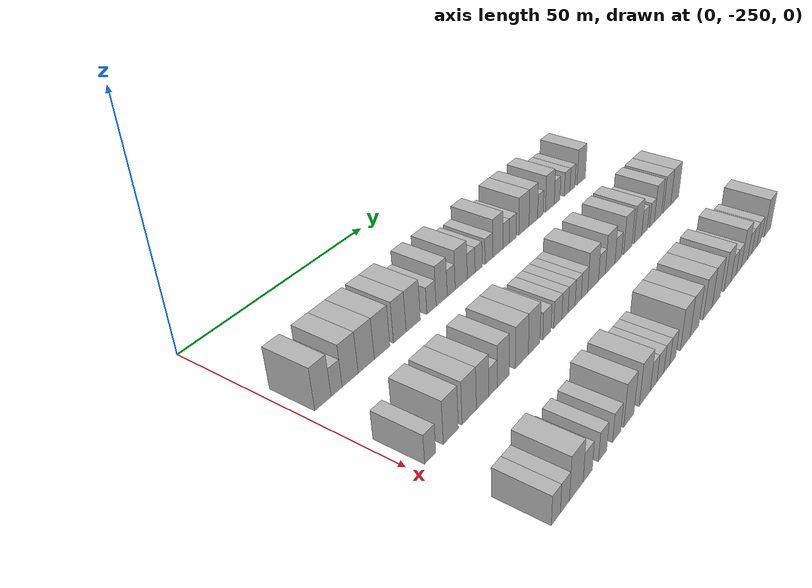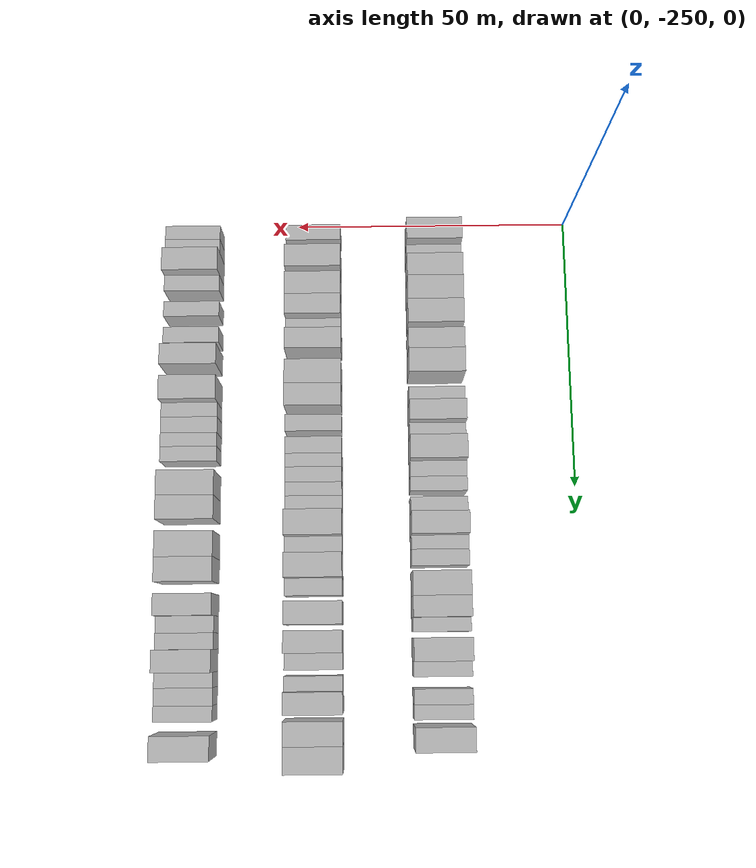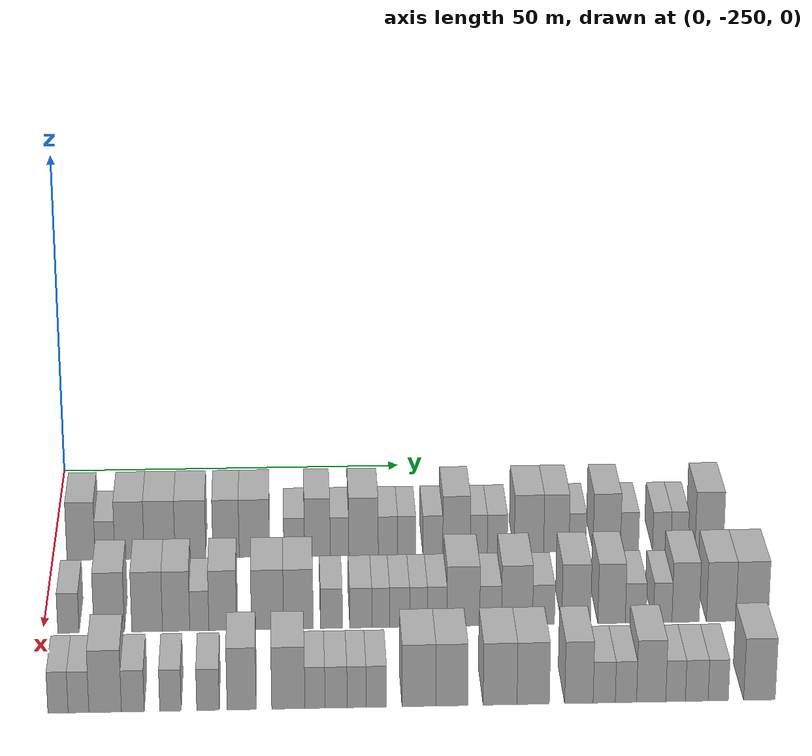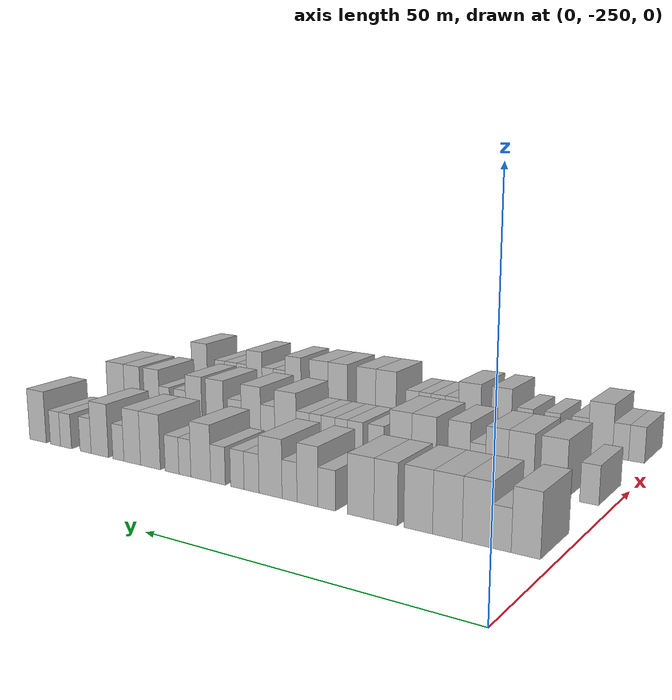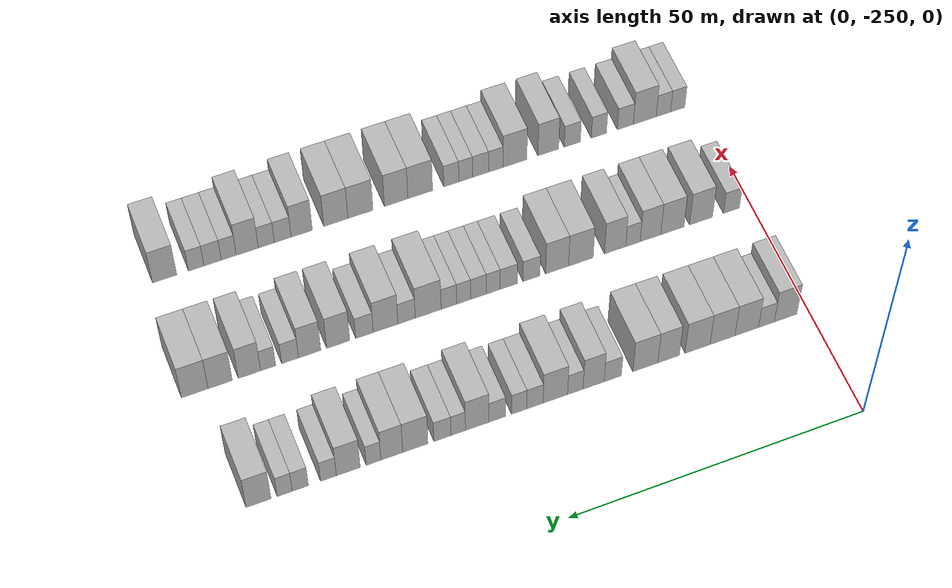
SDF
<sdf version="1.6">
 <world name="default">
  <model name="building_1">
   <static>1</static>
   <pose>25.0000 -246.0041 0 0.000000 0.000000 0.000000</pose>
   <link name="link">
    <pose>0 0 4.50 0 0 0</pose>
    <collision name="collision"><geometry><box><size>10.0000 3.9917 9.0000</size></box></geometry></collision>
    <visual name="visual">
     <cast_shadows>0</cast_shadows>
     <geometry><box><size>10.0000 3.9917 9.0000</size></box></geometry>
     <material>
      <script>
       <uri>model://HANNAS_wall/materials/scripts</uri>
       <uri>model://HANNAS_wall/materials/textures</uri>
       <name>vrc/HANNAS_wall</name>
      </script>
     </material>
    </visual>
   </link>
  </model>
  <model name="building_2">
   <static>1</static>
   <pose>25.0000 -242.6186 0 0.000000 0.000000 0.000000</pose>
   <link name="link">
    <pose>0 0 3.00 0 0 0</pose>
    <collision name="collision"><geometry><box><size>10.0000 2.7794 6.0000</size></box></geometry></collision>
    <visual name="visual">
     <cast_shadows>0</cast_shadows>
     <geometry><box><size>10.0000 2.7794 6.0000</size></box></geometry>
     <material>
      <script>
       <uri>model://HANNAS_wall/materials/scripts</uri>
       <uri>model://HANNAS_wall/materials/textures</uri>
       <name>vrc/HANNAS_wall</name>
      </script>
     </material>
    </visual>
   </link>
  </model>
  <model name="building_3">
   <static>1</static>
   <pose>25.0000 -239.1554 0 0.000000 0.000000 0.000000</pose>
   <link name="link">
    <pose>0 0 4.50 0 0 0</pose>
    <collision name="collision"><geometry><box><size>10.0000 4.1470 9.0000</size></box></geometry></collision>
    <visual name="visual">
     <cast_shadows>0</cast_shadows>
     <geometry><box><size>10.0000 4.1470 9.0000</size></box></geometry>
     <material>
      <script>
       <uri>model://HANNAS_wall/materials/scripts</uri>
       <uri>model://HANNAS_wall/materials/textures</uri>
       <name>vrc/HANNAS_wall</name>
      </script>
     </material>
    </visual>
   </link>
  </model>
  <model name="building_4">
   <static>1</static>
   <pose>25.0000 -234.9000 0 0.000000 0.000000 0.000000</pose>
   <link name="link">
    <pose>0 0 4.50 0 0 0</pose>
    <collision name="collision"><geometry><box><size>10.0000 4.3639 9.0000</size></box></geometry></collision>
    <visual name="visual">
     <cast_shadows>0</cast_shadows>
     <geometry><box><size>10.0000 4.3639 9.0000</size></box></geometry>
     <material>
      <script>
       <uri>model://HANNAS_wall/materials/scripts</uri>
       <uri>model://HANNAS_wall/materials/textures</uri>
       <name>vrc/HANNAS_wall</name>
      </script>
     </material>
    </visual>
   </link>
  </model>
  <model name="building_5">
   <static>1</static>
   <pose>25.0000 -230.5349 0 0.000000 0.000000 0.000000</pose>
   <link name="link">
    <pose>0 0 4.50 0 0 0</pose>
    <collision name="collision"><geometry><box><size>10.0000 4.3663 9.0000</size></box></geometry></collision>
    <visual name="visual">
     <cast_shadows>0</cast_shadows>
     <geometry><box><size>10.0000 4.3663 9.0000</size></box></geometry>
     <material>
      <script>
       <uri>model://HANNAS_wall/materials/scripts</uri>
       <uri>model://HANNAS_wall/materials/textures</uri>
       <name>vrc/HANNAS_wall</name>
      </script>
     </material>
    </visual>
   </link>
  </model>
  <model name="building_6">
   <static>1</static>
   <pose>25.0000 -225.4878 0 0.000000 0.000000 0.000000</pose>
   <link name="link">
    <pose>0 0 4.50 0 0 0</pose>
    <collision name="collision"><geometry><box><size>10.0000 3.7281 9.0000</size></box></geometry></collision>
    <visual name="visual">
     <cast_shadows>0</cast_shadows>
     <geometry><box><size>10.0000 3.7281 9.0000</size></box></geometry>
     <material>
      <script>
       <uri>model://HANNAS_wall/materials/scripts</uri>
       <uri>model://HANNAS_wall/materials/textures</uri>
       <name>vrc/HANNAS_wall</name>
      </script>
     </material>
    </visual>
   </link>
  </model>
  <model name="building_7">
   <static>1</static>
   <pose>25.0000 -221.4656 0 0.000000 0.000000 0.000000</pose>
   <link name="link">
    <pose>0 0 4.50 0 0 0</pose>
    <collision name="collision"><geometry><box><size>10.0000 4.3163 9.0000</size></box></geometry></collision>
    <visual name="visual">
     <cast_shadows>0</cast_shadows>
     <geometry><box><size>10.0000 4.3163 9.0000</size></box></geometry>
     <material>
      <script>
       <uri>model://HANNAS_wall/materials/scripts</uri>
       <uri>model://HANNAS_wall/materials/textures</uri>
       <name>vrc/HANNAS_wall</name>
      </script>
     </material>
    </visual>
   </link>
  </model>
  <model name="building_8">
   <static>1</static>
   <pose>25.0000 -215.8325 0 0.000000 0.000000 0.000000</pose>
   <link name="link">
    <pose>0 0 3.00 0 0 0</pose>
    <collision name="collision"><geometry><box><size>10.0000 2.9498 6.0000</size></box></geometry></collision>
    <visual name="visual">
     <cast_shadows>0</cast_shadows>
     <geometry><box><size>10.0000 2.9498 6.0000</size></box></geometry>
     <material>
      <script>
       <uri>model://HANNAS_wall/materials/scripts</uri>
       <uri>model://HANNAS_wall/materials/textures</uri>
       <name>vrc/HANNAS_wall</name>
      </script>
     </material>
    </visual>
   </link>
  </model>
  <model name="building_9">
   <static>1</static>
   <pose>25.0000 -212.5433 0 0.000000 0.000000 0.000000</pose>
   <link name="link">
    <pose>0 0 4.50 0 0 0</pose>
    <collision name="collision"><geometry><box><size>10.0000 3.6286 9.0000</size></box></geometry></collision>
    <visual name="visual">
     <cast_shadows>0</cast_shadows>
     <geometry><box><size>10.0000 3.6286 9.0000</size></box></geometry>
     <material>
      <script>
       <uri>model://HANNAS_wall/materials/scripts</uri>
       <uri>model://HANNAS_wall/materials/textures</uri>
       <name>vrc/HANNAS_wall</name>
      </script>
     </material>
    </visual>
   </link>
  </model>
  <model name="building_10">
   <static>1</static>
   <pose>25.0000 -209.4067 0 0.000000 0.000000 0.000000</pose>
   <link name="link">
    <pose>0 0 3.00 0 0 0</pose>
    <collision name="collision"><geometry><box><size>10.0000 2.6446 6.0000</size></box></geometry></collision>
    <visual name="visual">
     <cast_shadows>0</cast_shadows>
     <geometry><box><size>10.0000 2.6446 6.0000</size></box></geometry>
     <material>
      <script>
       <uri>model://HANNAS_wall/materials/scripts</uri>
       <uri>model://HANNAS_wall/materials/textures</uri>
       <name>vrc/HANNAS_wall</name>
      </script>
     </material>
    </visual>
   </link>
  </model>
  <model name="building_11">
   <static>1</static>
   <pose>25.0000 -205.9943 0 0.000000 0.000000 0.000000</pose>
   <link name="link">
    <pose>0 0 4.50 0 0 0</pose>
    <collision name="collision"><geometry><box><size>10.0000 4.1802 9.0000</size></box></geometry></collision>
    <visual name="visual">
     <cast_shadows>0</cast_shadows>
     <geometry><box><size>10.0000 4.1802 9.0000</size></box></geometry>
     <material>
      <script>
       <uri>model://HANNAS_wall/materials/scripts</uri>
       <uri>model://HANNAS_wall/materials/textures</uri>
       <name>vrc/HANNAS_wall</name>
      </script>
     </material>
    </visual>
   </link>
  </model>
  <model name="building_12">
   <static>1</static>
   <pose>25.0000 -202.5195 0 0.000000 0.000000 0.000000</pose>
   <link name="link">
    <pose>0 0 3.00 0 0 0</pose>
    <collision name="collision"><geometry><box><size>10.0000 2.7696 6.0000</size></box></geometry></collision>
    <visual name="visual">
     <cast_shadows>0</cast_shadows>
     <geometry><box><size>10.0000 2.7696 6.0000</size></box></geometry>
     <material>
      <script>
       <uri>model://HANNAS_wall/materials/scripts</uri>
       <uri>model://HANNAS_wall/materials/textures</uri>
       <name>vrc/HANNAS_wall</name>
      </script>
     </material>
    </visual>
   </link>
  </model>
  <model name="building_13">
   <static>1</static>
   <pose>25.0000 -199.8488 0 0.000000 0.000000 0.000000</pose>
   <link name="link">
    <pose>0 0 3.00 0 0 0</pose>
    <collision name="collision"><geometry><box><size>10.0000 2.5718 6.0000</size></box></geometry></collision>
    <visual name="visual">
     <cast_shadows>0</cast_shadows>
     <geometry><box><size>10.0000 2.5718 6.0000</size></box></geometry>
     <material>
      <script>
       <uri>model://HANNAS_wall/materials/scripts</uri>
       <uri>model://HANNAS_wall/materials/textures</uri>
       <name>vrc/HANNAS_wall</name>
      </script>
     </material>
    </visual>
   </link>
  </model>
  <model name="building_14">
   <static>1</static>
   <pose>25.0000 -196.1466 0 0.000000 0.000000 0.000000</pose>
   <link name="link">
    <pose>0 0 3.00 0 0 0</pose>
    <collision name="collision"><geometry><box><size>10.0000 2.8326 6.0000</size></box></geometry></collision>
    <visual name="visual">
     <cast_shadows>0</cast_shadows>
     <geometry><box><size>10.0000 2.8326 6.0000</size></box></geometry>
     <material>
      <script>
       <uri>model://HANNAS_wall/materials/scripts</uri>
       <uri>model://HANNAS_wall/materials/textures</uri>
       <name>vrc/HANNAS_wall</name>
      </script>
     </material>
    </visual>
   </link>
  </model>
  <model name="building_15">
   <static>1</static>
   <pose>25.0000 -192.7715 0 0.000000 0.000000 0.000000</pose>
   <link name="link">
    <pose>0 0 4.50 0 0 0</pose>
    <collision name="collision"><geometry><box><size>10.0000 3.9178 9.0000</size></box></geometry></collision>
    <visual name="visual">
     <cast_shadows>0</cast_shadows>
     <geometry><box><size>10.0000 3.9178 9.0000</size></box></geometry>
     <material>
      <script>
       <uri>model://HANNAS_wall/materials/scripts</uri>
       <uri>model://HANNAS_wall/materials/textures</uri>
       <name>vrc/HANNAS_wall</name>
      </script>
     </material>
    </visual>
   </link>
  </model>
  <model name="building_16">
   <static>1</static>
   <pose>25.0000 -189.5995 0 0.000000 0.000000 0.000000</pose>
   <link name="link">
    <pose>0 0 3.00 0 0 0</pose>
    <collision name="collision"><geometry><box><size>10.0000 2.4261 6.0000</size></box></geometry></collision>
    <visual name="visual">
     <cast_shadows>0</cast_shadows>
     <geometry><box><size>10.0000 2.4261 6.0000</size></box></geometry>
     <material>
      <script>
       <uri>model://HANNAS_wall/materials/scripts</uri>
       <uri>model://HANNAS_wall/materials/textures</uri>
       <name>vrc/HANNAS_wall</name>
      </script>
     </material>
    </visual>
   </link>
  </model>
  <model name="building_17">
   <static>1</static>
   <pose>25.0000 -186.9614 0 0.000000 0.000000 0.000000</pose>
   <link name="link">
    <pose>0 0 3.00 0 0 0</pose>
    <collision name="collision"><geometry><box><size>10.0000 2.8503 6.0000</size></box></geometry></collision>
    <visual name="visual">
     <cast_shadows>0</cast_shadows>
     <geometry><box><size>10.0000 2.8503 6.0000</size></box></geometry>
     <material>
      <script>
       <uri>model://HANNAS_wall/materials/scripts</uri>
       <uri>model://HANNAS_wall/materials/textures</uri>
       <name>vrc/HANNAS_wall</name>
      </script>
     </material>
    </visual>
   </link>
  </model>
  <model name="building_18">
   <static>1</static>
   <pose>25.0000 -182.4439 0 0.000000 0.000000 0.000000</pose>
   <link name="link">
    <pose>0 0 4.50 0 0 0</pose>
    <collision name="collision"><geometry><box><size>10.0000 4.1845 9.0000</size></box></geometry></collision>
    <visual name="visual">
     <cast_shadows>0</cast_shadows>
     <geometry><box><size>10.0000 4.1845 9.0000</size></box></geometry>
     <material>
      <script>
       <uri>model://HANNAS_wall/materials/scripts</uri>
       <uri>model://HANNAS_wall/materials/textures</uri>
       <name>vrc/HANNAS_wall</name>
      </script>
     </material>
    </visual>
   </link>
  </model>
  <model name="building_19">
   <static>1</static>
   <pose>25.0000 -178.5426 0 0.000000 0.000000 0.000000</pose>
   <link name="link">
    <pose>0 0 4.50 0 0 0</pose>
    <collision name="collision"><geometry><box><size>10.0000 3.6182 9.0000</size></box></geometry></collision>
    <visual name="visual">
     <cast_shadows>0</cast_shadows>
     <geometry><box><size>10.0000 3.6182 9.0000</size></box></geometry>
     <material>
      <script>
       <uri>model://HANNAS_wall/materials/scripts</uri>
       <uri>model://HANNAS_wall/materials/textures</uri>
       <name>vrc/HANNAS_wall</name>
      </script>
     </material>
    </visual>
   </link>
  </model>
  <model name="building_20">
   <static>1</static>
   <pose>25.0000 -175.5181 0 0.000000 0.000000 0.000000</pose>
   <link name="link">
    <pose>0 0 3.00 0 0 0</pose>
    <collision name="collision"><geometry><box><size>10.0000 2.4307 6.0000</size></box></geometry></collision>
    <visual name="visual">
     <cast_shadows>0</cast_shadows>
     <geometry><box><size>10.0000 2.4307 6.0000</size></box></geometry>
     <material>
      <script>
       <uri>model://HANNAS_wall/materials/scripts</uri>
       <uri>model://HANNAS_wall/materials/textures</uri>
       <name>vrc/HANNAS_wall</name>
      </script>
     </material>
    </visual>
   </link>
  </model>
  <model name="building_21">
   <static>1</static>
   <pose>25.0000 -171.3433 0 0.000000 0.000000 0.000000</pose>
   <link name="link">
    <pose>0 0 4.50 0 0 0</pose>
    <collision name="collision"><geometry><box><size>10.0000 3.9191 9.0000</size></box></geometry></collision>
    <visual name="visual">
     <cast_shadows>0</cast_shadows>
     <geometry><box><size>10.0000 3.9191 9.0000</size></box></geometry>
     <material>
      <script>
       <uri>model://HANNAS_wall/materials/scripts</uri>
       <uri>model://HANNAS_wall/materials/textures</uri>
       <name>vrc/HANNAS_wall</name>
      </script>
     </material>
    </visual>
   </link>
  </model>
  <model name="building_22">
   <static>1</static>
   <pose>25.0000 -168.0921 0 0.000000 0.000000 0.000000</pose>
   <link name="link">
    <pose>0 0 3.00 0 0 0</pose>
    <collision name="collision"><geometry><box><size>10.0000 2.5832 6.0000</size></box></geometry></collision>
    <visual name="visual">
     <cast_shadows>0</cast_shadows>
     <geometry><box><size>10.0000 2.5832 6.0000</size></box></geometry>
     <material>
      <script>
       <uri>model://HANNAS_wall/materials/scripts</uri>
       <uri>model://HANNAS_wall/materials/textures</uri>
       <name>vrc/HANNAS_wall</name>
      </script>
     </material>
    </visual>
   </link>
  </model>
  <model name="building_23">
   <static>1</static>
   <pose>25.0000 -163.4881 0 0.000000 0.000000 0.000000</pose>
   <link name="link">
    <pose>0 0 3.00 0 0 0</pose>
    <collision name="collision"><geometry><box><size>10.0000 2.6249 6.0000</size></box></geometry></collision>
    <visual name="visual">
     <cast_shadows>0</cast_shadows>
     <geometry><box><size>10.0000 2.6249 6.0000</size></box></geometry>
     <material>
      <script>
       <uri>model://HANNAS_wall/materials/scripts</uri>
       <uri>model://HANNAS_wall/materials/textures</uri>
       <name>vrc/HANNAS_wall</name>
      </script>
     </material>
    </visual>
   </link>
  </model>
  <model name="building_24">
   <static>1</static>
   <pose>25.0000 -160.9484 0 0.000000 0.000000 0.000000</pose>
   <link name="link">
    <pose>0 0 3.00 0 0 0</pose>
    <collision name="collision"><geometry><box><size>10.0000 2.4546 6.0000</size></box></geometry></collision>
    <visual name="visual">
     <cast_shadows>0</cast_shadows>
     <geometry><box><size>10.0000 2.4546 6.0000</size></box></geometry>
     <material>
      <script>
       <uri>model://HANNAS_wall/materials/scripts</uri>
       <uri>model://HANNAS_wall/materials/textures</uri>
       <name>vrc/HANNAS_wall</name>
      </script>
     </material>
    </visual>
   </link>
  </model>
  <model name="building_25">
   <static>1</static>
   <pose>25.0000 -156.6901 0 0.000000 0.000000 0.000000</pose>
   <link name="link">
    <pose>0 0 4.50 0 0 0</pose>
    <collision name="collision"><geometry><box><size>10.0000 4.0618 9.0000</size></box></geometry></collision>
    <visual name="visual">
     <cast_shadows>0</cast_shadows>
     <geometry><box><size>10.0000 4.0618 9.0000</size></box></geometry>
     <material>
      <script>
       <uri>model://HANNAS_wall/materials/scripts</uri>
       <uri>model://HANNAS_wall/materials/textures</uri>
       <name>vrc/HANNAS_wall</name>
      </script>
     </material>
    </visual>
   </link>
  </model>
  <model name="building_124">
   <static>1</static>
   <pose>47.0000 -246.5643 0 0.000000 0.000000 0.000000</pose>
   <link name="link">
    <pose>0 0 3.00 0 0 0</pose>
    <collision name="collision"><geometry><box><size>10.0000 2.8715 6.0000</size></box></geometry></collision>
    <visual name="visual">
     <cast_shadows>0</cast_shadows>
     <geometry><box><size>10.0000 2.8715 6.0000</size></box></geometry>
     <material>
      <script>
       <uri>model://HANNAS_wall/materials/scripts</uri>
       <uri>model://HANNAS_wall/materials/textures</uri>
       <name>vrc/HANNAS_wall</name>
      </script>
     </material>
    </visual>
   </link>
  </model>
  <model name="building_125">
   <static>1</static>
   <pose>47.0000 -241.0657 0 0.000000 0.000000 0.000000</pose>
   <link name="link">
    <pose>0 0 4.50 0 0 0</pose>
    <collision name="collision"><geometry><box><size>10.0000 4.1256 9.0000</size></box></geometry></collision>
    <visual name="visual">
     <cast_shadows>0</cast_shadows>
     <geometry><box><size>10.0000 4.1256 9.0000</size></box></geometry>
     <material>
      <script>
       <uri>model://HANNAS_wall/materials/scripts</uri>
       <uri>model://HANNAS_wall/materials/textures</uri>
       <name>vrc/HANNAS_wall</name>
      </script>
     </material>
    </visual>
   </link>
  </model>
  <model name="building_126">
   <static>1</static>
   <pose>47.0000 -235.9259 0 0.000000 0.000000 0.000000</pose>
   <link name="link">
    <pose>0 0 4.50 0 0 0</pose>
    <collision name="collision"><geometry><box><size>10.0000 4.1541 9.0000</size></box></geometry></collision>
    <visual name="visual">
     <cast_shadows>0</cast_shadows>
     <geometry><box><size>10.0000 4.1541 9.0000</size></box></geometry>
     <material>
      <script>
       <uri>model://HANNAS_wall/materials/scripts</uri>
       <uri>model://HANNAS_wall/materials/textures</uri>
       <name>vrc/HANNAS_wall</name>
      </script>
     </material>
    </visual>
   </link>
  </model>
  <model name="building_127">
   <static>1</static>
   <pose>47.0000 -232.0052 0 0.000000 0.000000 0.000000</pose>
   <link name="link">
    <pose>0 0 4.50 0 0 0</pose>
    <collision name="collision"><geometry><box><size>10.0000 3.6874 9.0000</size></box></geometry></collision>
    <visual name="visual">
     <cast_shadows>0</cast_shadows>
     <geometry><box><size>10.0000 3.6874 9.0000</size></box></geometry>
     <material>
      <script>
       <uri>model://HANNAS_wall/materials/scripts</uri>
       <uri>model://HANNAS_wall/materials/textures</uri>
       <name>vrc/HANNAS_wall</name>
      </script>
     </material>
    </visual>
   </link>
  </model>
  <model name="building_128">
   <static>1</static>
   <pose>47.0000 -228.8660 0 0.000000 0.000000 0.000000</pose>
   <link name="link">
    <pose>0 0 3.00 0 0 0</pose>
    <collision name="collision"><geometry><box><size>10.0000 2.5908 6.0000</size></box></geometry></collision>
    <visual name="visual">
     <cast_shadows>0</cast_shadows>
     <geometry><box><size>10.0000 2.5908 6.0000</size></box></geometry>
     <material>
      <script>
       <uri>model://HANNAS_wall/materials/scripts</uri>
       <uri>model://HANNAS_wall/materials/textures</uri>
       <name>vrc/HANNAS_wall</name>
      </script>
     </material>
    </visual>
   </link>
  </model>
  <model name="building_129">
   <static>1</static>
   <pose>47.0000 -225.6889 0 0.000000 0.000000 0.000000</pose>
   <link name="link">
    <pose>0 0 4.50 0 0 0</pose>
    <collision name="collision"><geometry><box><size>10.0000 3.7635 9.0000</size></box></geometry></collision>
    <visual name="visual">
     <cast_shadows>0</cast_shadows>
     <geometry><box><size>10.0000 3.7635 9.0000</size></box></geometry>
     <material>
      <script>
       <uri>model://HANNAS_wall/materials/scripts</uri>
       <uri>model://HANNAS_wall/materials/textures</uri>
       <name>vrc/HANNAS_wall</name>
      </script>
     </material>
    </visual>
   </link>
  </model>
  <model name="building_130">
   <static>1</static>
   <pose>47.0000 -219.6281 0 0.000000 0.000000 0.000000</pose>
   <link name="link">
    <pose>0 0 4.50 0 0 0</pose>
    <collision name="collision"><geometry><box><size>10.0000 4.3580 9.0000</size></box></geometry></collision>
    <visual name="visual">
     <cast_shadows>0</cast_shadows>
     <geometry><box><size>10.0000 4.3580 9.0000</size></box></geometry>
     <material>
      <script>
       <uri>model://HANNAS_wall/materials/scripts</uri>
       <uri>model://HANNAS_wall/materials/textures</uri>
       <name>vrc/HANNAS_wall</name>
      </script>
     </material>
    </visual>
   </link>
  </model>
  <model name="building_131">
   <static>1</static>
   <pose>47.0000 -215.4387 0 0.000000 0.000000 0.000000</pose>
   <link name="link">
    <pose>0 0 4.50 0 0 0</pose>
    <collision name="collision"><geometry><box><size>10.0000 4.0207 9.0000</size></box></geometry></collision>
    <visual name="visual">
     <cast_shadows>0</cast_shadows>
     <geometry><box><size>10.0000 4.0207 9.0000</size></box></geometry>
     <material>
      <script>
       <uri>model://HANNAS_wall/materials/scripts</uri>
       <uri>model://HANNAS_wall/materials/textures</uri>
       <name>vrc/HANNAS_wall</name>
      </script>
     </material>
    </visual>
   </link>
  </model>
  <model name="building_132">
   <static>1</static>
   <pose>47.0000 -210.9455 0 0.000000 0.000000 0.000000</pose>
   <link name="link">
    <pose>0 0 3.00 0 0 0</pose>
    <collision name="collision"><geometry><box><size>10.0000 2.9658 6.0000</size></box></geometry></collision>
    <visual name="visual">
     <cast_shadows>0</cast_shadows>
     <geometry><box><size>10.0000 2.9658 6.0000</size></box></geometry>
     <material>
      <script>
       <uri>model://HANNAS_wall/materials/scripts</uri>
       <uri>model://HANNAS_wall/materials/textures</uri>
       <name>vrc/HANNAS_wall</name>
      </script>
     </material>
    </visual>
   </link>
  </model>
  <model name="building_133">
   <static>1</static>
   <pose>47.0000 -206.9657 0 0.000000 0.000000 0.000000</pose>
   <link name="link">
    <pose>0 0 3.00 0 0 0</pose>
    <collision name="collision"><geometry><box><size>10.0000 2.9939 6.0000</size></box></geometry></collision>
    <visual name="visual">
     <cast_shadows>0</cast_shadows>
     <geometry><box><size>10.0000 2.9939 6.0000</size></box></geometry>
     <material>
      <script>
       <uri>model://HANNAS_wall/materials/scripts</uri>
       <uri>model://HANNAS_wall/materials/textures</uri>
       <name>vrc/HANNAS_wall</name>
      </script>
     </material>
    </visual>
   </link>
  </model>
  <model name="building_134">
   <static>1</static>
   <pose>47.0000 -204.2620 0 0.000000 0.000000 0.000000</pose>
   <link name="link">
    <pose>0 0 3.00 0 0 0</pose>
    <collision name="collision"><geometry><box><size>10.0000 2.4135 6.0000</size></box></geometry></collision>
    <visual name="visual">
     <cast_shadows>0</cast_shadows>
     <geometry><box><size>10.0000 2.4135 6.0000</size></box></geometry>
     <material>
      <script>
       <uri>model://HANNAS_wall/materials/scripts</uri>
       <uri>model://HANNAS_wall/materials/textures</uri>
       <name>vrc/HANNAS_wall</name>
      </script>
     </material>
    </visual>
   </link>
  </model>
  <model name="building_135">
   <static>1</static>
   <pose>47.0000 -201.6999 0 0.000000 0.000000 0.000000</pose>
   <link name="link">
    <pose>0 0 3.00 0 0 0</pose>
    <collision name="collision"><geometry><box><size>10.0000 2.7107 6.0000</size></box></geometry></collision>
    <visual name="visual">
     <cast_shadows>0</cast_shadows>
     <geometry><box><size>10.0000 2.7107 6.0000</size></box></geometry>
     <material>
      <script>
       <uri>model://HANNAS_wall/materials/scripts</uri>
       <uri>model://HANNAS_wall/materials/textures</uri>
       <name>vrc/HANNAS_wall</name>
      </script>
     </material>
    </visual>
   </link>
  </model>
  <model name="building_136">
   <static>1</static>
   <pose>47.0000 -199.1339 0 0.000000 0.000000 0.000000</pose>
   <link name="link">
    <pose>0 0 3.00 0 0 0</pose>
    <collision name="collision"><geometry><box><size>10.0000 2.4213 6.0000</size></box></geometry></collision>
    <visual name="visual">
     <cast_shadows>0</cast_shadows>
     <geometry><box><size>10.0000 2.4213 6.0000</size></box></geometry>
     <material>
      <script>
       <uri>model://HANNAS_wall/materials/scripts</uri>
       <uri>model://HANNAS_wall/materials/textures</uri>
       <name>vrc/HANNAS_wall</name>
      </script>
     </material>
    </visual>
   </link>
  </model>
  <model name="building_137">
   <static>1</static>
   <pose>47.0000 -196.5869 0 0.000000 0.000000 0.000000</pose>
   <link name="link">
    <pose>0 0 3.00 0 0 0</pose>
    <collision name="collision"><geometry><box><size>10.0000 2.6728 6.0000</size></box></geometry></collision>
    <visual name="visual">
     <cast_shadows>0</cast_shadows>
     <geometry><box><size>10.0000 2.6728 6.0000</size></box></geometry>
     <material>
      <script>
       <uri>model://HANNAS_wall/materials/scripts</uri>
       <uri>model://HANNAS_wall/materials/textures</uri>
       <name>vrc/HANNAS_wall</name>
      </script>
     </material>
    </visual>
   </link>
  </model>
  <model name="building_138">
   <static>1</static>
   <pose>47.0000 -193.0258 0 0.000000 0.000000 0.000000</pose>
   <link name="link">
    <pose>0 0 4.50 0 0 0</pose>
    <collision name="collision"><geometry><box><size>10.0000 4.4494 9.0000</size></box></geometry></collision>
    <visual name="visual">
     <cast_shadows>0</cast_shadows>
     <geometry><box><size>10.0000 4.4494 9.0000</size></box></geometry>
     <material>
      <script>
       <uri>model://HANNAS_wall/materials/scripts</uri>
       <uri>model://HANNAS_wall/materials/textures</uri>
       <name>vrc/HANNAS_wall</name>
      </script>
     </material>
    </visual>
   </link>
  </model>
  <model name="building_139">
   <static>1</static>
   <pose>47.0000 -189.3132 0 0.000000 0.000000 0.000000</pose>
   <link name="link">
    <pose>0 0 3.00 0 0 0</pose>
    <collision name="collision"><geometry><box><size>10.0000 2.9757 6.0000</size></box></geometry></collision>
    <visual name="visual">
     <cast_shadows>0</cast_shadows>
     <geometry><box><size>10.0000 2.9757 6.0000</size></box></geometry>
     <material>
      <script>
       <uri>model://HANNAS_wall/materials/scripts</uri>
       <uri>model://HANNAS_wall/materials/textures</uri>
       <name>vrc/HANNAS_wall</name>
      </script>
     </material>
    </visual>
   </link>
  </model>
  <model name="building_140">
   <static>1</static>
   <pose>47.0000 -185.7147 0 0.000000 0.000000 0.000000</pose>
   <link name="link">
    <pose>0 0 4.50 0 0 0</pose>
    <collision name="collision"><geometry><box><size>10.0000 4.2214 9.0000</size></box></geometry></collision>
    <visual name="visual">
     <cast_shadows>0</cast_shadows>
     <geometry><box><size>10.0000 4.2214 9.0000</size></box></geometry>
     <material>
      <script>
       <uri>model://HANNAS_wall/materials/scripts</uri>
       <uri>model://HANNAS_wall/materials/textures</uri>
       <name>vrc/HANNAS_wall</name>
      </script>
     </material>
    </visual>
   </link>
  </model>
  <model name="building_141">
   <static>1</static>
   <pose>47.0000 -182.1126 0 0.000000 0.000000 0.000000</pose>
   <link name="link">
    <pose>0 0 3.00 0 0 0</pose>
    <collision name="collision"><geometry><box><size>10.0000 2.9828 6.0000</size></box></geometry></collision>
    <visual name="visual">
     <cast_shadows>0</cast_shadows>
     <geometry><box><size>10.0000 2.9828 6.0000</size></box></geometry>
     <material>
      <script>
       <uri>model://HANNAS_wall/materials/scripts</uri>
       <uri>model://HANNAS_wall/materials/textures</uri>
       <name>vrc/HANNAS_wall</name>
      </script>
     </material>
    </visual>
   </link>
  </model>
  <model name="building_142">
   <static>1</static>
   <pose>47.0000 -177.6594 0 0.000000 0.000000 0.000000</pose>
   <link name="link">
    <pose>0 0 4.50 0 0 0</pose>
    <collision name="collision"><geometry><box><size>10.0000 3.9236 9.0000</size></box></geometry></collision>
    <visual name="visual">
     <cast_shadows>0</cast_shadows>
     <geometry><box><size>10.0000 3.9236 9.0000</size></box></geometry>
     <material>
      <script>
       <uri>model://HANNAS_wall/materials/scripts</uri>
       <uri>model://HANNAS_wall/materials/textures</uri>
       <name>vrc/HANNAS_wall</name>
      </script>
     </material>
    </visual>
   </link>
  </model>
  <model name="building_143">
   <static>1</static>
   <pose>47.0000 -172.8239 0 0.000000 0.000000 0.000000</pose>
   <link name="link">
    <pose>0 0 4.50 0 0 0</pose>
    <collision name="collision"><geometry><box><size>10.0000 3.7474 9.0000</size></box></geometry></collision>
    <visual name="visual">
     <cast_shadows>0</cast_shadows>
     <geometry><box><size>10.0000 3.7474 9.0000</size></box></geometry>
     <material>
      <script>
       <uri>model://HANNAS_wall/materials/scripts</uri>
       <uri>model://HANNAS_wall/materials/textures</uri>
       <name>vrc/HANNAS_wall</name>
      </script>
     </material>
    </visual>
   </link>
  </model>
  <model name="building_144">
   <static>1</static>
   <pose>47.0000 -169.5291 0 0.000000 0.000000 0.000000</pose>
   <link name="link">
    <pose>0 0 3.00 0 0 0</pose>
    <collision name="collision"><geometry><box><size>10.0000 2.8423 6.0000</size></box></geometry></collision>
    <visual name="visual">
     <cast_shadows>0</cast_shadows>
     <geometry><box><size>10.0000 2.8423 6.0000</size></box></geometry>
     <material>
      <script>
       <uri>model://HANNAS_wall/materials/scripts</uri>
       <uri>model://HANNAS_wall/materials/textures</uri>
       <name>vrc/HANNAS_wall</name>
      </script>
     </material>
    </visual>
   </link>
  </model>
  <model name="building_145">
   <static>1</static>
   <pose>47.0000 -165.8440 0 0.000000 0.000000 0.000000</pose>
   <link name="link">
    <pose>0 0 3.00 0 0 0</pose>
    <collision name="collision"><geometry><box><size>10.0000 2.5278 6.0000</size></box></geometry></collision>
    <visual name="visual">
     <cast_shadows>0</cast_shadows>
     <geometry><box><size>10.0000 2.5278 6.0000</size></box></geometry>
     <material>
      <script>
       <uri>model://HANNAS_wall/materials/scripts</uri>
       <uri>model://HANNAS_wall/materials/textures</uri>
       <name>vrc/HANNAS_wall</name>
      </script>
     </material>
    </visual>
   </link>
  </model>
  <model name="building_146">
   <static>1</static>
   <pose>47.0000 -162.7148 0 0.000000 0.000000 0.000000</pose>
   <link name="link">
    <pose>0 0 4.50 0 0 0</pose>
    <collision name="collision"><geometry><box><size>10.0000 3.7306 9.0000</size></box></geometry></collision>
    <visual name="visual">
     <cast_shadows>0</cast_shadows>
     <geometry><box><size>10.0000 3.7306 9.0000</size></box></geometry>
     <material>
      <script>
       <uri>model://HANNAS_wall/materials/scripts</uri>
       <uri>model://HANNAS_wall/materials/textures</uri>
       <name>vrc/HANNAS_wall</name>
      </script>
     </material>
    </visual>
   </link>
  </model>
  <model name="building_147">
   <static>1</static>
   <pose>47.0000 -157.8361 0 0.000000 0.000000 0.000000</pose>
   <link name="link">
    <pose>0 0 4.50 0 0 0</pose>
    <collision name="collision"><geometry><box><size>10.0000 4.0269 9.0000</size></box></geometry></collision>
    <visual name="visual">
     <cast_shadows>0</cast_shadows>
     <geometry><box><size>10.0000 4.0269 9.0000</size></box></geometry>
     <material>
      <script>
       <uri>model://HANNAS_wall/materials/scripts</uri>
       <uri>model://HANNAS_wall/materials/textures</uri>
       <name>vrc/HANNAS_wall</name>
      </script>
     </material>
    </visual>
   </link>
  </model>
  <model name="building_148">
   <static>1</static>
   <pose>47.0000 -153.6093 0 0.000000 0.000000 0.000000</pose>
   <link name="link">
    <pose>0 0 4.50 0 0 0</pose>
    <collision name="collision"><geometry><box><size>10.0000 4.4265 9.0000</size></box></geometry></collision>
    <visual name="visual">
     <cast_shadows>0</cast_shadows>
     <geometry><box><size>10.0000 4.4265 9.0000</size></box></geometry>
     <material>
      <script>
       <uri>model://HANNAS_wall/materials/scripts</uri>
       <uri>model://HANNAS_wall/materials/textures</uri>
       <name>vrc/HANNAS_wall</name>
      </script>
     </material>
    </visual>
   </link>
  </model>
  <model name="building_246">
   <static>1</static>
   <pose>69.0000 -246.6971 0 0.000000 0.000000 0.000000</pose>
   <link name="link">
    <pose>0 0 3.00 0 0 0</pose>
    <collision name="collision"><geometry><box><size>10.0000 2.6058 6.0000</size></box></geometry></collision>
    <visual name="visual">
     <cast_shadows>0</cast_shadows>
     <geometry><box><size>10.0000 2.6058 6.0000</size></box></geometry>
     <material>
      <script>
       <uri>model://HANNAS_wall/materials/scripts</uri>
       <uri>model://HANNAS_wall/materials/textures</uri>
       <name>vrc/HANNAS_wall</name>
      </script>
     </material>
    </visual>
   </link>
  </model>
  <model name="building_247">
   <static>1</static>
   <pose>69.0000 -244.0559 0 0.000000 0.000000 0.000000</pose>
   <link name="link">
    <pose>0 0 3.00 0 0 0</pose>
    <collision name="collision"><geometry><box><size>10.0000 2.6765 6.0000</size></box></geometry></collision>
    <visual name="visual">
     <cast_shadows>0</cast_shadows>
     <geometry><box><size>10.0000 2.6765 6.0000</size></box></geometry>
     <material>
      <script>
       <uri>model://HANNAS_wall/materials/scripts</uri>
       <uri>model://HANNAS_wall/materials/textures</uri>
       <name>vrc/HANNAS_wall</name>
      </script>
     </material>
    </visual>
   </link>
  </model>
  <model name="building_248">
   <static>1</static>
   <pose>69.0000 -240.6177 0 0.000000 0.000000 0.000000</pose>
   <link name="link">
    <pose>0 0 4.50 0 0 0</pose>
    <collision name="collision"><geometry><box><size>10.0000 4.2000 9.0000</size></box></geometry></collision>
    <visual name="visual">
     <cast_shadows>0</cast_shadows>
     <geometry><box><size>10.0000 4.2000 9.0000</size></box></geometry>
     <material>
      <script>
       <uri>model://HANNAS_wall/materials/scripts</uri>
       <uri>model://HANNAS_wall/materials/textures</uri>
       <name>vrc/HANNAS_wall</name>
      </script>
     </material>
    </visual>
   </link>
  </model>
  <model name="building_249">
   <static>1</static>
   <pose>69.0000 -237.0475 0 0.000000 0.000000 0.000000</pose>
   <link name="link">
    <pose>0 0 3.00 0 0 0</pose>
    <collision name="collision"><geometry><box><size>10.0000 2.9403 6.0000</size></box></geometry></collision>
    <visual name="visual">
     <cast_shadows>0</cast_shadows>
     <geometry><box><size>10.0000 2.9403 6.0000</size></box></geometry>
     <material>
      <script>
       <uri>model://HANNAS_wall/materials/scripts</uri>
       <uri>model://HANNAS_wall/materials/textures</uri>
       <name>vrc/HANNAS_wall</name>
      </script>
     </material>
    </visual>
   </link>
  </model>
  <model name="building_250">
   <static>1</static>
   <pose>69.0000 -232.1891 0 0.000000 0.000000 0.000000</pose>
   <link name="link">
    <pose>0 0 3.00 0 0 0</pose>
    <collision name="collision"><geometry><box><size>10.0000 2.7765 6.0000</size></box></geometry></collision>
    <visual name="visual">
     <cast_shadows>0</cast_shadows>
     <geometry><box><size>10.0000 2.7765 6.0000</size></box></geometry>
     <material>
      <script>
       <uri>model://HANNAS_wall/materials/scripts</uri>
       <uri>model://HANNAS_wall/materials/textures</uri>
       <name>vrc/HANNAS_wall</name>
      </script>
     </material>
    </visual>
   </link>
  </model>
  <model name="building_251">
   <static>1</static>
   <pose>69.0000 -227.3393 0 0.000000 0.000000 0.000000</pose>
   <link name="link">
    <pose>0 0 3.00 0 0 0</pose>
    <collision name="collision"><geometry><box><size>10.0000 2.9231 6.0000</size></box></geometry></collision>
    <visual name="visual">
     <cast_shadows>0</cast_shadows>
     <geometry><box><size>10.0000 2.9231 6.0000</size></box></geometry>
     <material>
      <script>
       <uri>model://HANNAS_wall/materials/scripts</uri>
       <uri>model://HANNAS_wall/materials/textures</uri>
       <name>vrc/HANNAS_wall</name>
      </script>
     </material>
    </visual>
   </link>
  </model>
  <model name="building_252">
   <static>1</static>
   <pose>69.0000 -222.9933 0 0.000000 0.000000 0.000000</pose>
   <link name="link">
    <pose>0 0 4.50 0 0 0</pose>
    <collision name="collision"><geometry><box><size>10.0000 3.7689 9.0000</size></box></geometry></collision>
    <visual name="visual">
     <cast_shadows>0</cast_shadows>
     <geometry><box><size>10.0000 3.7689 9.0000</size></box></geometry>
     <material>
      <script>
       <uri>model://HANNAS_wall/materials/scripts</uri>
       <uri>model://HANNAS_wall/materials/textures</uri>
       <name>vrc/HANNAS_wall</name>
      </script>
     </material>
    </visual>
   </link>
  </model>
  <model name="building_253">
   <static>1</static>
   <pose>69.0000 -216.9647 0 0.000000 0.000000 0.000000</pose>
   <link name="link">
    <pose>0 0 4.50 0 0 0</pose>
    <collision name="collision"><geometry><box><size>10.0000 4.2884 9.0000</size></box></geometry></collision>
    <visual name="visual">
     <cast_shadows>0</cast_shadows>
     <geometry><box><size>10.0000 4.2884 9.0000</size></box></geometry>
     <material>
      <script>
       <uri>model://HANNAS_wall/materials/scripts</uri>
       <uri>model://HANNAS_wall/materials/textures</uri>
       <name>vrc/HANNAS_wall</name>
      </script>
     </material>
    </visual>
   </link>
  </model>
  <model name="building_254">
   <static>1</static>
   <pose>69.0000 -213.5182 0 0.000000 0.000000 0.000000</pose>
   <link name="link">
    <pose>0 0 3.00 0 0 0</pose>
    <collision name="collision"><geometry><box><size>10.0000 2.6047 6.0000</size></box></geometry></collision>
    <visual name="visual">
     <cast_shadows>0</cast_shadows>
     <geometry><box><size>10.0000 2.6047 6.0000</size></box></geometry>
     <material>
      <script>
       <uri>model://HANNAS_wall/materials/scripts</uri>
       <uri>model://HANNAS_wall/materials/textures</uri>
       <name>vrc/HANNAS_wall</name>
      </script>
     </material>
    </visual>
   </link>
  </model>
  <model name="building_255">
   <static>1</static>
   <pose>69.0000 -210.7854 0 0.000000 0.000000 0.000000</pose>
   <link name="link">
    <pose>0 0 3.00 0 0 0</pose>
    <collision name="collision"><geometry><box><size>10.0000 2.8608 6.0000</size></box></geometry></collision>
    <visual name="visual">
     <cast_shadows>0</cast_shadows>
     <geometry><box><size>10.0000 2.8608 6.0000</size></box></geometry>
     <material>
      <script>
       <uri>model://HANNAS_wall/materials/scripts</uri>
       <uri>model://HANNAS_wall/materials/textures</uri>
       <name>vrc/HANNAS_wall</name>
      </script>
     </material>
    </visual>
   </link>
  </model>
  <model name="building_256">
   <static>1</static>
   <pose>69.0000 -208.1252 0 0.000000 0.000000 0.000000</pose>
   <link name="link">
    <pose>0 0 3.00 0 0 0</pose>
    <collision name="collision"><geometry><box><size>10.0000 2.4597 6.0000</size></box></geometry></collision>
    <visual name="visual">
     <cast_shadows>0</cast_shadows>
     <geometry><box><size>10.0000 2.4597 6.0000</size></box></geometry>
     <material>
      <script>
       <uri>model://HANNAS_wall/materials/scripts</uri>
       <uri>model://HANNAS_wall/materials/textures</uri>
       <name>vrc/HANNAS_wall</name>
      </script>
     </material>
    </visual>
   </link>
  </model>
  <model name="building_257">
   <static>1</static>
   <pose>69.0000 -205.5623 0 0.000000 0.000000 0.000000</pose>
   <link name="link">
    <pose>0 0 3.00 0 0 0</pose>
    <collision name="collision"><geometry><box><size>10.0000 2.6662 6.0000</size></box></geometry></collision>
    <visual name="visual">
     <cast_shadows>0</cast_shadows>
     <geometry><box><size>10.0000 2.6662 6.0000</size></box></geometry>
     <material>
      <script>
       <uri>model://HANNAS_wall/materials/scripts</uri>
       <uri>model://HANNAS_wall/materials/textures</uri>
       <name>vrc/HANNAS_wall</name>
      </script>
     </material>
    </visual>
   </link>
  </model>
  <model name="building_258">
   <static>1</static>
   <pose>69.0000 -200.0406 0 0.000000 0.000000 0.000000</pose>
   <link name="link">
    <pose>0 0 4.50 0 0 0</pose>
    <collision name="collision"><geometry><box><size>10.0000 4.3771 9.0000</size></box></geometry></collision>
    <visual name="visual">
     <cast_shadows>0</cast_shadows>
     <geometry><box><size>10.0000 4.3771 9.0000</size></box></geometry>
     <material>
      <script>
       <uri>model://HANNAS_wall/materials/scripts</uri>
       <uri>model://HANNAS_wall/materials/textures</uri>
       <name>vrc/HANNAS_wall</name>
      </script>
     </material>
    </visual>
   </link>
  </model>
  <model name="building_259">
   <static>1</static>
   <pose>69.0000 -195.7781 0 0.000000 0.000000 0.000000</pose>
   <link name="link">
    <pose>0 0 4.50 0 0 0</pose>
    <collision name="collision"><geometry><box><size>10.0000 4.1478 9.0000</size></box></geometry></collision>
    <visual name="visual">
     <cast_shadows>0</cast_shadows>
     <geometry><box><size>10.0000 4.1478 9.0000</size></box></geometry>
     <material>
      <script>
       <uri>model://HANNAS_wall/materials/scripts</uri>
       <uri>model://HANNAS_wall/materials/textures</uri>
       <name>vrc/HANNAS_wall</name>
      </script>
     </material>
    </visual>
   </link>
  </model>
  <model name="building_260">
   <static>1</static>
   <pose>69.0000 -189.5004 0 0.000000 0.000000 0.000000</pose>
   <link name="link">
    <pose>0 0 4.50 0 0 0</pose>
    <collision name="collision"><geometry><box><size>10.0000 4.4075 9.0000</size></box></geometry></collision>
    <visual name="visual">
     <cast_shadows>0</cast_shadows>
     <geometry><box><size>10.0000 4.4075 9.0000</size></box></geometry>
     <material>
      <script>
       <uri>model://HANNAS_wall/materials/scripts</uri>
       <uri>model://HANNAS_wall/materials/textures</uri>
       <name>vrc/HANNAS_wall</name>
      </script>
     </material>
    </visual>
   </link>
  </model>
  <model name="building_261">
   <static>1</static>
   <pose>69.0000 -185.1948 0 0.000000 0.000000 0.000000</pose>
   <link name="link">
    <pose>0 0 4.50 0 0 0</pose>
    <collision name="collision"><geometry><box><size>10.0000 4.2039 9.0000</size></box></geometry></collision>
    <visual name="visual">
     <cast_shadows>0</cast_shadows>
     <geometry><box><size>10.0000 4.2039 9.0000</size></box></geometry>
     <material>
      <script>
       <uri>model://HANNAS_wall/materials/scripts</uri>
       <uri>model://HANNAS_wall/materials/textures</uri>
       <name>vrc/HANNAS_wall</name>
      </script>
     </material>
    </visual>
   </link>
  </model>
  <model name="building_262">
   <static>1</static>
   <pose>69.0000 -179.2473 0 0.000000 0.000000 0.000000</pose>
   <link name="link">
    <pose>0 0 4.50 0 0 0</pose>
    <collision name="collision"><geometry><box><size>10.0000 3.6910 9.0000</size></box></geometry></collision>
    <visual name="visual">
     <cast_shadows>0</cast_shadows>
     <geometry><box><size>10.0000 3.6910 9.0000</size></box></geometry>
     <material>
      <script>
       <uri>model://HANNAS_wall/materials/scripts</uri>
       <uri>model://HANNAS_wall/materials/textures</uri>
       <name>vrc/HANNAS_wall</name>
      </script>
     </material>
    </visual>
   </link>
  </model>
  <model name="building_263">
   <static>1</static>
   <pose>69.0000 -175.9580 0 0.000000 0.000000 0.000000</pose>
   <link name="link">
    <pose>0 0 3.00 0 0 0</pose>
    <collision name="collision"><geometry><box><size>10.0000 2.8876 6.0000</size></box></geometry></collision>
    <visual name="visual">
     <cast_shadows>0</cast_shadows>
     <geometry><box><size>10.0000 2.8876 6.0000</size></box></geometry>
     <material>
      <script>
       <uri>model://HANNAS_wall/materials/scripts</uri>
       <uri>model://HANNAS_wall/materials/textures</uri>
       <name>vrc/HANNAS_wall</name>
      </script>
     </material>
    </visual>
   </link>
  </model>
  <model name="building_264">
   <static>1</static>
   <pose>69.0000 -173.1270 0 0.000000 0.000000 0.000000</pose>
   <link name="link">
    <pose>0 0 3.00 0 0 0</pose>
    <collision name="collision"><geometry><box><size>10.0000 2.7745 6.0000</size></box></geometry></collision>
    <visual name="visual">
     <cast_shadows>0</cast_shadows>
     <geometry><box><size>10.0000 2.7745 6.0000</size></box></geometry>
     <material>
      <script>
       <uri>model://HANNAS_wall/materials/scripts</uri>
       <uri>model://HANNAS_wall/materials/textures</uri>
       <name>vrc/HANNAS_wall</name>
      </script>
     </material>
    </visual>
   </link>
  </model>
  <model name="building_265">
   <static>1</static>
   <pose>69.0000 -169.8349 0 0.000000 0.000000 0.000000</pose>
   <link name="link">
    <pose>0 0 4.50 0 0 0</pose>
    <collision name="collision"><geometry><box><size>10.0000 3.8096 9.0000</size></box></geometry></collision>
    <visual name="visual">
     <cast_shadows>0</cast_shadows>
     <geometry><box><size>10.0000 3.8096 9.0000</size></box></geometry>
     <material>
      <script>
       <uri>model://HANNAS_wall/materials/scripts</uri>
       <uri>model://HANNAS_wall/materials/textures</uri>
       <name>vrc/HANNAS_wall</name>
      </script>
     </material>
    </visual>
   </link>
  </model>
  <model name="building_266">
   <static>1</static>
   <pose>69.0000 -166.6478 0 0.000000 0.000000 0.000000</pose>
   <link name="link">
    <pose>0 0 3.00 0 0 0</pose>
    <collision name="collision"><geometry><box><size>10.0000 2.5646 6.0000</size></box></geometry></collision>
    <visual name="visual">
     <cast_shadows>0</cast_shadows>
     <geometry><box><size>10.0000 2.5646 6.0000</size></box></geometry>
     <material>
      <script>
       <uri>model://HANNAS_wall/materials/scripts</uri>
       <uri>model://HANNAS_wall/materials/textures</uri>
       <name>vrc/HANNAS_wall</name>
      </script>
     </material>
    </visual>
   </link>
  </model>
  <model name="building_267">
   <static>1</static>
   <pose>69.0000 -163.8814 0 0.000000 0.000000 0.000000</pose>
   <link name="link">
    <pose>0 0 3.00 0 0 0</pose>
    <collision name="collision"><geometry><box><size>10.0000 2.9682 6.0000</size></box></geometry></collision>
    <visual name="visual">
     <cast_shadows>0</cast_shadows>
     <geometry><box><size>10.0000 2.9682 6.0000</size></box></geometry>
     <material>
      <script>
       <uri>model://HANNAS_wall/materials/scripts</uri>
       <uri>model://HANNAS_wall/materials/textures</uri>
       <name>vrc/HANNAS_wall</name>
      </script>
     </material>
    </visual>
   </link>
  </model>
  <model name="building_268">
   <static>1</static>
   <pose>69.0000 -161.0753 0 0.000000 0.000000 0.000000</pose>
   <link name="link">
    <pose>0 0 3.00 0 0 0</pose>
    <collision name="collision"><geometry><box><size>10.0000 2.6440 6.0000</size></box></geometry></collision>
    <visual name="visual">
     <cast_shadows>0</cast_shadows>
     <geometry><box><size>10.0000 2.6440 6.0000</size></box></geometry>
     <material>
      <script>
       <uri>model://HANNAS_wall/materials/scripts</uri>
       <uri>model://HANNAS_wall/materials/textures</uri>
       <name>vrc/HANNAS_wall</name>
      </script>
     </material>
    </visual>
   </link>
  </model>
  <model name="building_269">
   <static>1</static>
   <pose>69.0000 -155.6913 0 0.000000 0.000000 0.000000</pose>
   <link name="link">
    <pose>0 0 4.50 0 0 0</pose>
    <collision name="collision"><geometry><box><size>10.0000 4.1241 9.0000</size></box></geometry></collision>
    <visual name="visual">
     <cast_shadows>0</cast_shadows>
     <geometry><box><size>10.0000 4.1241 9.0000</size></box></geometry>
     <material>
      <script>
       <uri>model://HANNAS_wall/materials/scripts</uri>
       <uri>model://HANNAS_wall/materials/textures</uri>
       <name>vrc/HANNAS_wall</name>
      </script>
     </material>
    </visual>
   </link>
  </model>
 </world>
</sdf>
